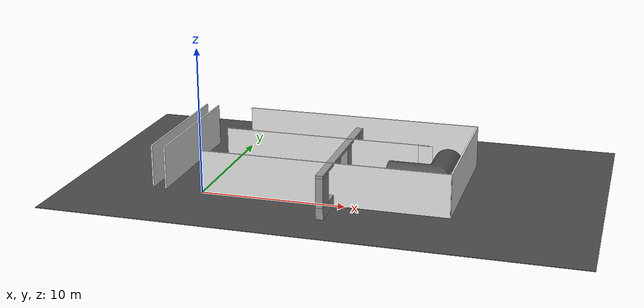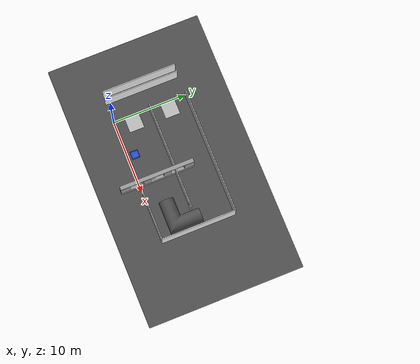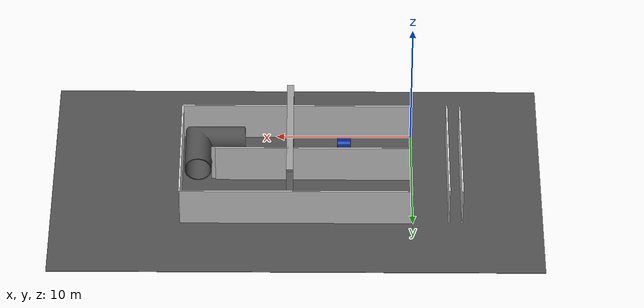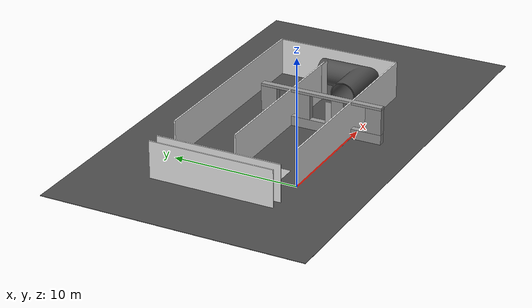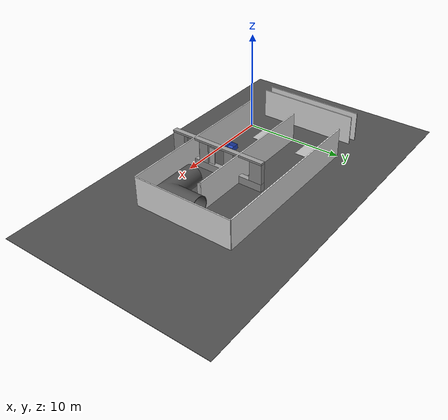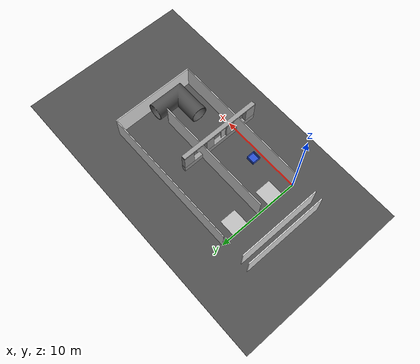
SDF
<?xml version="1.0" ?>
<sdf version="1.5">
  <world name="default">

    <gui fullscreen='0'>
      <camera name='user_camera'>
        <pose>-15.8 -3.2 24.8 0 0.7 0.4</pose>
      </camera>
    </gui>

    <scene>
      <grid>false</grid>
      <origin_visual>false</origin_visual>
    </scene>

    <!-- A global light source -->
    <include>
      <uri>model://sun</uri>
    </include>

    <include>
      <uri>model://AIGC2_ground</uri>
	  <pose> 8.5 5.0 0.0 0 0 0 </pose>
    </include>

    <include>
      <uri>model://AIGC2_start</uri>
	  <pose> 1.0 7.5 0.0 0 0 0 </pose>
    </include>

    <include>
      <uri>model://AIGC2_landing</uri>
	  <pose> 1.0 2.5 0.0 0 0 0 </pose>
    </include>

    <!--  WALL                                -->

    <include>
      <uri>model://AIGC2_wall_17m</uri>
      <name>AIGC2_wall_17m_1</name>
	  <pose> 8.5 10.0 0.0 0 0 0 </pose>
    </include>

    <include>
      <uri>model://AIGC2_wall_17m</uri>
      <name>AIGC2_wall_17m_2</name>
	  <pose> 8.5 0.0 0.0 0 0 0 </pose>
    </include>

    <include>
      <uri>model://AIGC2_wall_14m</uri>
      <name>AIGC2_wall_14m</name>
	  <pose> 7.25 5.0 0.0 0 0 0 </pose>
    </include>

    <include>
      <uri>model://AIGC2_wall_10m</uri>
      <name>AIGC2_wall_10m</name>
	  <pose> 17.0 5.0 0.0 0 0 -1.57079 </pose>
    </include>

    <include>
      <uri>model://AIGC2_wall_10m</uri>
      <name>AIGC2_wall_10m</name>
	  <pose> -3.6 5.0 0.0 0 0 -1.57079 </pose>
    </include>

    <!--  2. Wall Obstacle                    -->

    <!--  3. POLE OBSTACLE                    -->

    <!--  4. NET OBSTACLE                     -->

    <!--  5. TREE OBSTACLE                    -->

    <!--  6. CORRIDOR OBSTACLE                -->

    <include>
      <uri>model://AIGC2_tunnel</uri>
      <name>AIGC2_tunnel</name>
	  <pose> 15.75 6.4 1.6 0 0 3.141592 </pose>
    </include>

    <!--  7. WINDOW OBSTACLE                  -->

    <include>
      <uri>model://AIGC2_window</uri>
      <name>AIGC2_window</name>
	  <pose> 9.0 2.5 0.0 0 0 0.0 </pose>
    </include>

    <include>
      <uri>model://AIGC2_window_glass</uri>
      <name>AIGC2_glass</name>
	  <pose> 9.0 1.3 0.5 0 0 0.0 </pose>
    </include>

    <!--  8. BLUE BOX                         -->

    <include>
      <uri>model://AIGC2_box</uri>
      <name>AIGC2_box</name>
	  <pose> 5.0 1.0 0.0 0 0 0.0 </pose>
    </include>

    <!--  9. ETC                              -->

    <include>
      <uri>model://AIGC2_wall_1m</uri>
      <name>AIGC2_wall_1m</name>
	  <pose> 14.3 4.9 0.0 0 0 0.0 </pose>
    </include>

    <include>
      <uri>model://AIGC2_wall_10m</uri>
      <name>AIGC2_wall_10m_etc</name>
	  <pose> -2.64 4.9 0.0 0 0 -1.57079 </pose>
    </include>

    <physics name='default_physics' default='0' type='ode'>
      <gravity>0 0 -9.8066</gravity>
      <ode>
        <solver>
          <type>quick</type>
          <iters>10</iters>
          <sor>1.3</sor>
          <use_dynamic_moi_rescaling>0</use_dynamic_moi_rescaling>
        </solver>
        <constraints>
          <cfm>0</cfm>
          <erp>0.2</erp>
          <contact_max_correcting_vel>100</contact_max_correcting_vel>
          <contact_surface_layer>0.001</contact_surface_layer>
        </constraints>
      </ode>
      <max_step_size>0.004</max_step_size>
      <real_time_factor>1</real_time_factor>
      <real_time_update_rate>250</real_time_update_rate>
      <magnetic_field>6.0e-6 2.3e-5 -4.2e-5</magnetic_field>
    </physics>
    <gui fullscreen='0'>
      <camera name='user_camera'>
        <pose frame=''>-21.5641 -5.24295 22.3626 0 0.563642 -0.035802</pose>
        <view_controller>orbit</view_controller>
        <projection_type>perspective</projection_type>
      </camera>
    </gui>
  </world>
</sdf>

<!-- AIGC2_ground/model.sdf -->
<sdf version="1.5">
  <model name="AIGC2_ground">
    <static>true</static>
    <link name="link">
      <collision name="collision">
        <geometry>
          <box>
            <size>36 21 .04</size>
          </box>
        </geometry>
      </collision>
      <visual name="visual">
        <cast_shadows>false</cast_shadows>
        <geometry>
          <box>
            <size>36 21 .04</size>
          </box>
        </geometry>
        <material>
          <script>
            <uri>model://AIGC2_ground/materials/scripts</uri>
            <uri>model://AIGC2_ground/materials/textures</uri>
            <name>vrc/asphalt</name>
          </script>
        </material>
      </visual>
    </link>
  </model>
</sdf>

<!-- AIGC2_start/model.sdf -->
<sdf version="1.5">
  <model name="AIGC2_start">
    <static>true</static>
    <link name="link">
      <pose>0 0 0.0 0 0 0</pose>
      <collision name="collision">
        <geometry>
          <box>
            <size>2.0 2.0 0.05</size>
          </box>
        </geometry>
      </collision>
      <visual name="visual">
        <cast_shadows>false</cast_shadows>
        <geometry>
          <box>
            <size>2.0 2.0 0.05</size>
          </box>
        </geometry>
        <material>
          <script>
            <uri>model://AIGC2_start/materials/scripts</uri>
            <uri>model://AIGC2_start/materials/textures</uri>
            <name>vrc/start</name>
          </script>
        </material>
      </visual>
    </link>
  </model>
</sdf>

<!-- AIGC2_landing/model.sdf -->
<sdf version="1.5">
  <model name="AIGC2_landing">
    <static>true</static>
    <link name="link">
      <pose>0 0 0.0 0 0 0</pose>
      <collision name="collision">
        <geometry>
          <box>
            <size>2.0 2.0 0.05</size>
          </box>
        </geometry>
      </collision>
      <visual name="visual">
        <cast_shadows>false</cast_shadows>
        <geometry>
          <box>
            <size>2.0 2.0 0.05</size>
          </box>
        </geometry>
        <material>
          <script>
            <uri>model://AIGC2_landing/materials/scripts</uri>
            <uri>model://AIGC2_landing/materials/textures</uri>
            <name>vrc/landing</name>
          </script>
        </material>
      </visual>
    </link>
  </model>
</sdf>

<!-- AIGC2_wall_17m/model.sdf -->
<sdf version="1.5">
  <model name="AIGC2_wall_17m">
    <static>true</static>
    <link name="link">
      <pose>0 0 1.5 0 0 0</pose>
      <collision name="collision">
        <geometry>
          <box>
            <size>17.0 0.1 3.0</size>
          </box>
        </geometry>
      </collision>
      <visual name="visual">
        <cast_shadows>false</cast_shadows>
        <geometry>
          <box>
            <size>17.0 0.1 3.0</size>
          </box>
        </geometry>
        <material>
			<script>
				<name>Gazebo/White</name>
				<uri>file://media/materials/scripts/gazebo.material</uri>
			</script>
        </material>
      </visual>
    </link>
  </model>
</sdf>

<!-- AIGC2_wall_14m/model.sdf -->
<sdf version="1.5">
  <model name="AIGC2_wall_14m">
    <static>true</static>
    <link name="link">
      <pose>0 0 1.5 0 0 0</pose>
      <collision name="collision">
        <geometry>
          <box>
            <size>14.5 0.1 3.0</size>
          </box>
        </geometry>
      </collision>
      <visual name="visual">
        <cast_shadows>false</cast_shadows>
        <geometry>
          <box>
            <size>14.5 0.1 3.0</size>
          </box>
        </geometry>
        <material>
			<script>
				<name>Gazebo/White</name>
				<uri>file://media/materials/scripts/gazebo.material</uri>
			</script>
        </material>
      </visual>
    </link>
  </model>
</sdf>

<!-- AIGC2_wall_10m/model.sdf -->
<sdf version="1.5">
  <model name="AIGC2_wall_10m">
    <static>true</static>
    <link name="link">
      <pose>0 0 1.5 0 0 0</pose>
      <collision name="collision">
        <geometry>
          <box>
            <size>10.0 0.1 3.0</size>
          </box>
        </geometry>
      </collision>
      <visual name="visual">
        <cast_shadows>false</cast_shadows>
        <geometry>
          <box>
            <size>10.0 0.1 3.0</size>
          </box>
        </geometry>
        <material>
			<script>
				<name>Gazebo/White</name>
				<uri>file://media/materials/scripts/gazebo.material</uri>
			</script>
        </material>
      </visual>
    </link>
  </model>
</sdf>

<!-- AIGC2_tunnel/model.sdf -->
<sdf version="1.5">
  <model name="AIGC2_tunnel">
    <static>true</static>
	<link name='chassis1'>
		<collision name='collision1'>
			<geometry>
				<mesh>
				<scale>0.01 0.01 0.01</scale>
				<uri>model://AIGC2_tunnel/AIGC_TUNNEL.stl</uri></mesh>
			</geometry>
		</collision>

		<visual name='visual1'>
			<geometry>
				<mesh>
				<scale>0.01 0.01 0.01</scale>
				<uri>model://AIGC2_tunnel/AIGC_TUNNEL.stl</uri></mesh>
			</geometry>
		    <material>
		      <script>
		        <name>Gazebo/DarkGrey</name>
		        <uri>file://media/materials/scripts/gazebo.material</uri>
		      </script>
		    </material>
		</visual>
	</link>
  </model>
</sdf>

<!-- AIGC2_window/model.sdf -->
<sdf version="1.5">
  <model name="AIGC2_window">
    <static>true</static>
    <link name="link">
      <pose>0 0 0.4 0 0 0</pose>
      <collision name="collision">
        <geometry>
          <box>
            <size>0.5 10.0 0.8</size>
          </box>
        </geometry>
      </collision>
      <visual name="visual">
        <cast_shadows>false</cast_shadows>
        <geometry>
          <box>
            <size>0.5 10.0 0.8</size>
          </box>
        </geometry>
        <material>
          <script>
            <uri>model://AIGC2_window/materials/scripts</uri>
            <uri>model://AIGC2_window/materials/textures</uri>
            <name>vrc/grey_wall</name>
          </script>
        </material>
      </visual>
    </link>

    <link name="link1">
      <pose>0 0 2.9 0 0 0</pose>
      <collision name="collision">
        <geometry>
          <box>
            <size>0.5 10.0 0.2</size>
          </box>
        </geometry>
      </collision>
      <visual name="visual">
        <cast_shadows>false</cast_shadows>
        <geometry>
          <box>
            <size>0.5 10.0 0.2</size>
          </box>
        </geometry>
        <material>
          <script>
            <uri>model://AIGC2_window/materials/scripts</uri>
            <uri>model://AIGC2_window/materials/textures</uri>
            <name>vrc/grey_wall</name>
          </script>
        </material>
      </visual>
    </link>

    <link name="link2">
      <pose>0 1.4 1.8 0 0 0</pose>
      <collision name="collision">
        <geometry>
          <box>
            <size>0.5 1.0 2.0</size>
          </box>
        </geometry>
      </collision>
      <visual name="visual">
        <cast_shadows>false</cast_shadows>
        <geometry>
          <box>
            <size>0.5 1.0 2.0</size>
          </box>
        </geometry>
        <material>
          <script>
            <uri>model://AIGC2_window/materials/scripts</uri>
            <uri>model://AIGC2_window/materials/textures</uri>
            <name>vrc/grey_wall</name>
          </script>
        </material>
      </visual>
    </link>

    <link name="link3">
      <pose>0 -1.4 1.8 0 0 0</pose>
      <collision name="collision">
        <geometry>
          <box>
            <size>0.5 1.0 2.0</size>
          </box>
        </geometry>
      </collision>
      <visual name="visual">
        <cast_shadows>false</cast_shadows>
        <geometry>
          <box>
            <size>0.5 1.0 2.0</size>
          </box>
        </geometry>
        <material>
          <script>
            <uri>model://AIGC2_window/materials/scripts</uri>
            <uri>model://AIGC2_window/materials/textures</uri>
            <name>vrc/grey_wall</name>
          </script>
        </material>
      </visual>
    </link>

    <link name="link4">
      <pose>0 4.35 1.8 0 0 0</pose>
      <collision name="collision">
        <geometry>
          <box>
            <size>0.5 1.3 2.0</size>
          </box>
        </geometry>
      </collision>
      <visual name="visual">
        <cast_shadows>false</cast_shadows>
        <geometry>
          <box>
            <size>0.5 1.3 2.0</size>
          </box>
        </geometry>
        <material>
          <script>
            <uri>model://AIGC2_window/materials/scripts</uri>
            <uri>model://AIGC2_window/materials/textures</uri>
            <name>vrc/grey_wall</name>
          </script>
        </material>
      </visual>
    </link>

    <link name="link5">
      <pose>0 -4.35 1.8 0 0 0</pose>
      <collision name="collision">
        <geometry>
          <box>
            <size>0.5 1.3 2.0</size>
          </box>
        </geometry>
      </collision>
      <visual name="visual">
        <cast_shadows>false</cast_shadows>
        <geometry>
          <box>
            <size>0.5 1.3 2.0</size>
          </box>
        </geometry>
        <material>
          <script>
            <uri>model://AIGC2_window/materials/scripts</uri>
            <uri>model://AIGC2_window/materials/textures</uri>
            <name>vrc/grey_wall</name>
          </script>
        </material>
      </visual>
    </link>

  </model>
</sdf>

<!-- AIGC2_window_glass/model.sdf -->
<sdf version="1.5">
  <model name="AIGC2_window_glass">
    <static>true</static>
    <link name="link">
      <pose>0 0 1.0 0 0 0</pose>
      <collision name="collision">
        <geometry>
          <box>
            <size>0.1 1.8 2.0</size>
          </box>
        </geometry>
      </collision>
      <visual name="visual">
        <cast_shadows>false</cast_shadows>
        <geometry>
          <box>
            <size>0.1 1.8 2.0</size>
          </box>
        </geometry>
        <material>
          <script>
            <uri>model://AIGC2_window_glass/materials/scripts</uri>
            <uri>model://AIGC2_window_glass/materials/textures</uri>
            <name>vrc/window</name>
          </script>
        </material>
      </visual>
    </link>
  </model>
</sdf>

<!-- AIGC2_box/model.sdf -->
<sdf version="1.5">
  <model name="AIGC2_box">
    <static>true</static>
    <link name="link">
      <pose>0.0 0 0 0 0 0</pose>
      <collision name="collision">
        <geometry>
          <box>
            <size>1.0 1.0 0.1</size>
          </box>
        </geometry>
      </collision>
      <visual name="visual">
        <cast_shadows>false</cast_shadows>
        <geometry>
          <box>
            <size>1.0 1.0 0.1</size>
          </box>
        </geometry>
        <material>
			<script>
				<name>Gazebo/Blue</name>
				<uri>file://media/materials/scripts/gazebo.material</uri>
			</script>
        </material>
      </visual>
    </link>

    <link name="link1">
      <pose>0.0 0.49 0.25 0 0 0</pose>
      <collision name="collision">
        <geometry>
          <box>
            <size>1.0 0.02 0.5</size>
          </box>
        </geometry>
      </collision>
      <visual name="visual">
        <cast_shadows>false</cast_shadows>
        <geometry>
          <box>
            <size>1.0 0.02 0.5</size>
          </box>
        </geometry>
        <material>
			<script>
				<name>Gazebo/Blue</name>
				<uri>file://media/materials/scripts/gazebo.material</uri>
			</script>
        </material>
      </visual>
    </link>

    <link name="link2">
      <pose>0.0 -0.49 0.25 0 0 0</pose>
      <collision name="collision">
        <geometry>
          <box>
            <size>1.0 0.02 0.5</size>
          </box>
        </geometry>
      </collision>
      <visual name="visual">
        <cast_shadows>false</cast_shadows>
        <geometry>
          <box>
            <size>1.0 0.02 0.5</size>
          </box>
        </geometry>
        <material>
			<script>
				<name>Gazebo/Blue</name>
				<uri>file://media/materials/scripts/gazebo.material</uri>
			</script>
        </material>
      </visual>
    </link>

    <link name="link3">
      <pose>0.49 0.0 0.25 0 0 0</pose>
      <collision name="collision">
        <geometry>
          <box>
            <size>0.02 1.0 0.5</size>
          </box>
        </geometry>
      </collision>
      <visual name="visual">
        <cast_shadows>false</cast_shadows>
        <geometry>
          <box>
            <size>0.02 1.0 0.5</size>
          </box>
        </geometry>
        <material>
			<script>
				<name>Gazebo/Blue</name>
				<uri>file://media/materials/scripts/gazebo.material</uri>
			</script>
        </material>
      </visual>
    </link>

    <link name="link4">
      <pose>-0.49 0.0 0.25 0 0 0</pose>
      <collision name="collision">
        <geometry>
          <box>
            <size>0.02 1.0 0.5</size>
          </box>
        </geometry>
      </collision>
      <visual name="visual">
        <cast_shadows>false</cast_shadows>
        <geometry>
          <box>
            <size>0.02 1.0 0.5</size>
          </box>
        </geometry>
        <material>
			<script>
				<name>Gazebo/Blue</name>
				<uri>file://media/materials/scripts/gazebo.material</uri>
			</script>
        </material>
      </visual>
    </link>

  </model>
</sdf>

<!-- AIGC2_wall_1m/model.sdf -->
<sdf version="1.5">
  <model name="AIGC2_wall_1m">
    <static>true</static>
    <link name="link">
      <pose>0 0 1.5 0 0 0</pose>
      <collision name="collision">
        <geometry>
          <box>
            <size>1.0 0.02 3.0</size>
          </box>
        </geometry>
      </collision>
      <visual name="visual">
        <cast_shadows>false</cast_shadows>
        <geometry>
          <box>
            <size>1.0 0.02 3.0</size>
          </box>
        </geometry>
        <material>
			<script>
				<name>Gazebo/White</name>
				<uri>file://media/materials/scripts/gazebo.material</uri>
			</script>
        </material>
      </visual>
    </link>
  </model>
</sdf>
